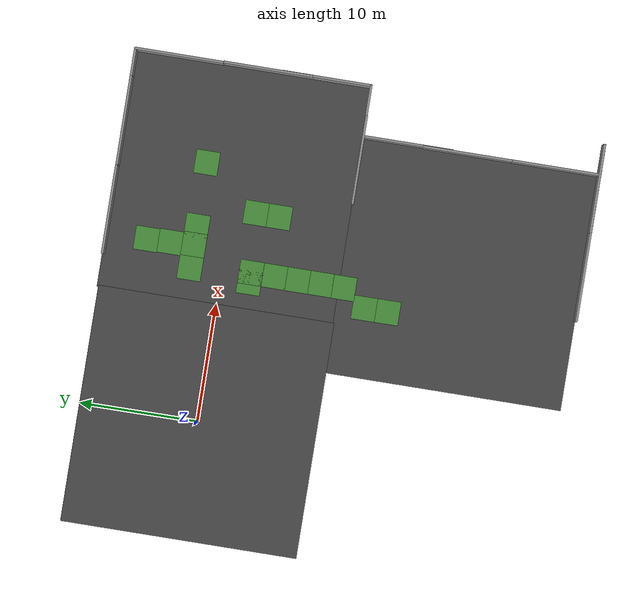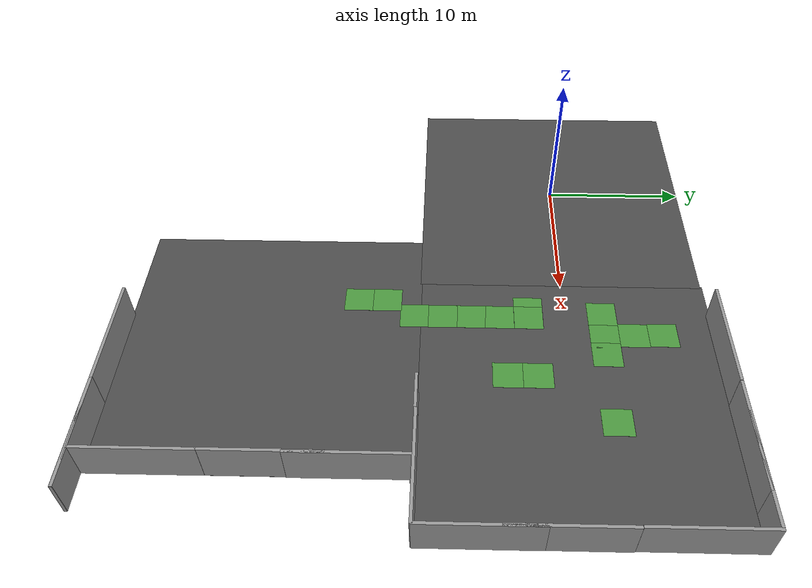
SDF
<sdf version="1.7">
 <world name="default">
  <model name="asphalt_plane">
   <static>1</static>
   <link name="link">
    <collision name="collision"><geometry><box><size>20 20 0.1</size></box></geometry></collision>
    <visual name="visual">
     <cast_shadows>0</cast_shadows>
     <geometry><box><size>20 20 0.1</size></box></geometry>
     <material>
      <script>
       <uri>model://asphalt_plane/materials/scripts</uri>
       <uri>model://asphalt_plane/materials/textures</uri>
       <name>vrc/asphalt</name>
      </script>
     </material>
    </visual>
   </link>
  </model>
  <model name="asphalt_plane_0">
   <static>1</static>
   <link name="link">
    <collision name="collision"><geometry><box><size>20 20 0.1</size></box></geometry></collision>
    <visual name="visual">
     <cast_shadows>0</cast_shadows>
     <geometry><box><size>20 20 0.1</size></box></geometry>
     <material>
      <script>
       <uri>model://asphalt_plane/materials/scripts</uri>
       <uri>model://asphalt_plane/materials/textures</uri>
       <name>vrc/asphalt</name>
      </script>
     </material>
    </visual>
   </link>
   <pose>19.8726 0.115885 0 0 -0 0</pose>
  </model>
  <model name="grey_wall_clone_0_clone_clone">
   <static>1</static>
   <link name="link">
    <pose>0 0 1.4 0 -0 0</pose>
    <collision name="collision"><geometry><box><size>7.5 0.2 2.8</size></box></geometry></collision>
    <visual name="visual">
     <cast_shadows>0</cast_shadows>
     <geometry><box><size>7.5 0.2 2.8</size></box></geometry>
     <material>
      <script>
       <uri>model://grey_wall/materials/scripts</uri>
       <uri>model://grey_wall/materials/textures</uri>
       <name>vrc/grey_wall</name>
      </script>
     </material>
    </visual>
   </link>
   <pose>23.7504 -9.91232 0 0 -0 0</pose>
  </model>
  <model name="grey_wall_clone_0_clone_clone_3">
   <static>1</static>
   <link name="link">
    <pose>0 0 1.4 0 -0 0</pose>
    <collision name="collision"><geometry><box><size>7.5 0.2 2.8</size></box></geometry></collision>
    <visual name="visual">
     <cast_shadows>0</cast_shadows>
     <geometry><box><size>7.5 0.2 2.8</size></box></geometry>
     <material>
      <script>
       <uri>model://grey_wall/materials/scripts</uri>
       <uri>model://grey_wall/materials/textures</uri>
       <name>vrc/grey_wall</name>
      </script>
     </material>
    </visual>
   </link>
   <pose>16.365 9.97288 0 0 -0 0</pose>
  </model>
  <model name="grey_wall_clone_0_clone_clone_4">
   <static>1</static>
   <link name="link">
    <pose>0 0 1.4 0 -0 0</pose>
    <collision name="collision"><geometry><box><size>7.5 0.2 2.8</size></box></geometry></collision>
    <visual name="visual">
     <cast_shadows>0</cast_shadows>
     <geometry><box><size>7.5 0.2 2.8</size></box></geometry>
     <material>
      <script>
       <uri>model://grey_wall/materials/scripts</uri>
       <uri>model://grey_wall/materials/textures</uri>
       <name>vrc/grey_wall</name>
      </script>
     </material>
    </visual>
   </link>
   <pose>23.8974 9.95874 0 0 -0 0</pose>
  </model>
  <model name="grey_wall_clone_0_clone_clone_4_clone">
   <static>1</static>
   <link name="link">
    <pose>0 0 1.4 0 -0 0</pose>
    <collision name="collision"><geometry><box><size>7.5 0.2 2.8</size></box></geometry></collision>
    <visual name="visual">
     <cast_shadows>0</cast_shadows>
     <geometry><box><size>7.5 0.2 2.8</size></box></geometry>
     <material>
      <script>
       <uri>model://grey_wall/materials/scripts</uri>
       <uri>model://grey_wall/materials/textures</uri>
       <name>vrc/grey_wall</name>
      </script>
     </material>
    </visual>
   </link>
   <pose>29.9378 6.30804 0 0 -0 1.57</pose>
  </model>
  <model name="grey_wall_clone_0_clone_clone_4_clone_0">
   <static>1</static>
   <link name="link">
    <pose>0 0 1.4 0 -0 0</pose>
    <collision name="collision"><geometry><box><size>7.5 0.2 2.8</size></box></geometry></collision>
    <visual name="visual">
     <cast_shadows>0</cast_shadows>
     <geometry><box><size>7.5 0.2 2.8</size></box></geometry>
     <material>
      <script>
       <uri>model://grey_wall/materials/scripts</uri>
       <uri>model://grey_wall/materials/textures</uri>
       <name>vrc/grey_wall</name>
      </script>
     </material>
    </visual>
   </link>
   <pose>26.2746 -9.87846 0 0 -0 0</pose>
  </model>
  <model name="grey_wall_clone_0_clone_clone_4_clone_1">
   <static>1</static>
   <link name="link">
    <pose>0 0 1.4 0 -0 0</pose>
    <collision name="collision"><geometry><box><size>7.5 0.2 2.8</size></box></geometry></collision>
    <visual name="visual">
     <cast_shadows>0</cast_shadows>
     <geometry><box><size>7.5 0.2 2.8</size></box></geometry>
     <material>
      <script>
       <uri>model://grey_wall/materials/scripts</uri>
       <uri>model://grey_wall/materials/textures</uri>
       <name>vrc/grey_wall</name>
      </script>
     </material>
    </visual>
   </link>
   <pose>26.1143 9.96003 0 0 -0 0</pose>
  </model>
  <model name="grey_wall_clone_0_clone_clone_4_clone_clone">
   <static>1</static>
   <link name="link">
    <pose>0 0 1.4 0 -0 0</pose>
    <collision name="collision"><geometry><box><size>7.5 0.2 2.8</size></box></geometry></collision>
    <visual name="visual">
     <cast_shadows>0</cast_shadows>
     <geometry><box><size>7.5 0.2 2.8</size></box></geometry>
     <material>
      <script>
       <uri>model://grey_wall/materials/scripts</uri>
       <uri>model://grey_wall/materials/textures</uri>
       <name>vrc/grey_wall</name>
      </script>
     </material>
    </visual>
   </link>
   <pose>29.9748 -1.21482 0 0 -0 1.57</pose>
  </model>
  <model name="grey_wall_clone_0_clone_clone_4_clone_clone_0">
   <static>1</static>
   <link name="link">
    <pose>0 0 1.4 0 -0 0</pose>
    <collision name="collision"><geometry><box><size>7.5 0.2 2.8</size></box></geometry></collision>
    <visual name="visual">
     <cast_shadows>0</cast_shadows>
     <geometry><box><size>7.5 0.2 2.8</size></box></geometry>
     <material>
      <script>
       <uri>model://grey_wall/materials/scripts</uri>
       <uri>model://grey_wall/materials/textures</uri>
       <name>vrc/grey_wall</name>
      </script>
     </material>
    </visual>
   </link>
   <pose>29.9905 -6.17844 0 0 -0 1.57</pose>
  </model>
  <model name="asphalt_plane_1">
   <static>1</static>
   <link name="link">
    <collision name="collision"><geometry><box><size>20 20 0.1</size></box></geometry></collision>
    <visual name="visual">
     <cast_shadows>0</cast_shadows>
     <geometry><box><size>20 20 0.1</size></box></geometry>
     <material>
      <script>
       <uri>model://asphalt_plane/materials/scripts</uri>
       <uri>model://asphalt_plane/materials/textures</uri>
       <name>vrc/asphalt</name>
      </script>
     </material>
    </visual>
   </link>
   <pose>15.7588 -19.8717 0 0 -0 0</pose>
  </model>
  <model name="grey_wall_0_clone">
   <static>1</static>
   <link name="link">
    <pose>0 0 1.4 0 -0 0</pose>
    <collision name="collision"><geometry><box><size>7.5 0.2 2.8</size></box></geometry></collision>
    <visual name="visual">
     <cast_shadows>0</cast_shadows>
     <geometry><box><size>7.5 0.2 2.8</size></box></geometry>
     <material>
      <script>
       <uri>model://grey_wall/materials/scripts</uri>
       <uri>model://grey_wall/materials/textures</uri>
       <name>vrc/grey_wall</name>
      </script>
     </material>
    </visual>
   </link>
   <pose>17.0707 -29.8389 0 0 -0 0</pose>
  </model>
  <model name="grey_wall_0_clone_0">
   <static>1</static>
   <link name="link">
    <pose>0 0 1.4 0 -0 0</pose>
    <collision name="collision"><geometry><box><size>7.5 0.2 2.8</size></box></geometry></collision>
    <visual name="visual">
     <cast_shadows>0</cast_shadows>
     <geometry><box><size>7.5 0.2 2.8</size></box></geometry>
     <material>
      <script>
       <uri>model://grey_wall/materials/scripts</uri>
       <uri>model://grey_wall/materials/textures</uri>
       <name>vrc/grey_wall</name>
      </script>
     </material>
    </visual>
   </link>
   <pose>24.5202 -29.8309 0 0 -0 0</pose>
  </model>
  <model name="grey_wall_0_clone_1">
   <static>1</static>
   <link name="link">
    <pose>0 0 1.4 0 -0 0</pose>
    <collision name="collision"><geometry><box><size>7.5 0.2 2.8</size></box></geometry></collision>
    <visual name="visual">
     <cast_shadows>0</cast_shadows>
     <geometry><box><size>7.5 0.2 2.8</size></box></geometry>
     <material>
      <script>
       <uri>model://grey_wall/materials/scripts</uri>
       <uri>model://grey_wall/materials/textures</uri>
       <name>vrc/grey_wall</name>
      </script>
     </material>
    </visual>
   </link>
   <pose>24.5331 -29.8401 0 0 -0 0</pose>
  </model>
  <model name="grey_wall_0_clone_0_clone">
   <static>1</static>
   <link name="link">
    <pose>0 0 1.4 0 -0 0</pose>
    <collision name="collision"><geometry><box><size>7.5 0.2 2.8</size></box></geometry></collision>
    <visual name="visual">
     <cast_shadows>0</cast_shadows>
     <geometry><box><size>7.5 0.2 2.8</size></box></geometry>
     <material>
      <script>
       <uri>model://grey_wall/materials/scripts</uri>
       <uri>model://grey_wall/materials/textures</uri>
       <name>vrc/grey_wall</name>
      </script>
     </material>
    </visual>
   </link>
   <pose>25.6822 -18.7134 0 0 -0 1.57134</pose>
  </model>
  <model name="grey_wall_0_clone_0_clone_0">
   <static>1</static>
   <link name="link">
    <pose>0 0 1.4 0 -0 0</pose>
    <collision name="collision"><geometry><box><size>7.5 0.2 2.8</size></box></geometry></collision>
    <visual name="visual">
     <cast_shadows>0</cast_shadows>
     <geometry><box><size>7.5 0.2 2.8</size></box></geometry>
     <material>
      <script>
       <uri>model://grey_wall/materials/scripts</uri>
       <uri>model://grey_wall/materials/textures</uri>
       <name>vrc/grey_wall</name>
      </script>
     </material>
    </visual>
   </link>
   <pose>25.7225 -13.7256 0 0 -0 1.57134</pose>
  </model>
  <model name="grass_20">
   <static>1</static>
   <link name="grass_plane">
    <visual name="visual">
     <pose>0 0 0.07 0 -0 0</pose>
     <cast_shadows>0</cast_shadows>
     <geometry><plane><normal>0 0 1</normal><size>2 2</size></plane></geometry>
     <material>
      <script>
       <uri>model://grass/materials/scripts</uri>
       <uri>model://grass/materials/textures</uri>
       <name>vrc/grass_small</name>
      </script>
     </material>
    </visual>
   </link>
   <pose>12.6119 2.65209 0 0 -0 0</pose>
  </model>
  <model name="grass_21">
   <static>1</static>
   <link name="grass_plane">
    <visual name="visual">
     <pose>0 0 0.07 0 -0 0</pose>
     <cast_shadows>0</cast_shadows>
     <geometry><plane><normal>0 0 1</normal><size>2 2</size></plane></geometry>
     <material>
      <script>
       <uri>model://grass/materials/scripts</uri>
       <uri>model://grass/materials/textures</uri>
       <name>vrc/grass_small</name>
      </script>
     </material>
    </visual>
   </link>
   <pose>14.6105 2.65182 0 0 -0 0</pose>
  </model>
  <model name="grass_22">
   <static>1</static>
   <link name="grass_plane">
    <visual name="visual">
     <pose>0 0 0.07 0 -0 0</pose>
     <cast_shadows>0</cast_shadows>
     <geometry><plane><normal>0 0 1</normal><size>2 2</size></plane></geometry>
     <material>
      <script>
       <uri>model://grass/materials/scripts</uri>
       <uri>model://grass/materials/textures</uri>
       <name>vrc/grass_small</name>
      </script>
     </material>
    </visual>
   </link>
   <pose>16.1898 2.64487 0 0 -0 0</pose>
  </model>
  <model name="grass_23">
   <static>1</static>
   <link name="grass_plane">
    <visual name="visual">
     <pose>0 0 0.07 0 -0 0</pose>
     <cast_shadows>0</cast_shadows>
     <geometry><plane><normal>0 0 1</normal><size>2 2</size></plane></geometry>
     <material>
      <script>
       <uri>model://grass/materials/scripts</uri>
       <uri>model://grass/materials/textures</uri>
       <name>vrc/grass_small</name>
      </script>
     </material>
    </visual>
   </link>
   <pose>14.5111 4.64952 0 0 -0 0</pose>
  </model>
  <model name="grass_24">
   <static>1</static>
   <link name="grass_plane">
    <visual name="visual">
     <pose>0 0 0.07 0 -0 0</pose>
     <cast_shadows>0</cast_shadows>
     <geometry><plane><normal>0 0 1</normal><size>2 2</size></plane></geometry>
     <material>
      <script>
       <uri>model://grass/materials/scripts</uri>
       <uri>model://grass/materials/textures</uri>
       <name>vrc/grass_small</name>
      </script>
     </material>
    </visual>
   </link>
   <pose>14.453 6.64404 0 0 -0 0</pose>
  </model>
  <model name="grass_25">
   <static>1</static>
   <link name="grass_plane">
    <visual name="visual">
     <pose>0 0 0.07 0 -0 0</pose>
     <cast_shadows>0</cast_shadows>
     <geometry><plane><normal>0 0 1</normal><size>2 2</size></plane></geometry>
     <material>
      <script>
       <uri>model://grass/materials/scripts</uri>
       <uri>model://grass/materials/textures</uri>
       <name>vrc/grass_small</name>
      </script>
     </material>
    </visual>
   </link>
   <pose>21.5588 2.67354 0 0 -0 0</pose>
  </model>
  <model name="grass_26">
   <static>1</static>
   <link name="grass_plane">
    <visual name="visual">
     <pose>0 0 0.07 0 -0 0</pose>
     <cast_shadows>0</cast_shadows>
     <geometry><plane><normal>0 0 1</normal><size>2 2</size></plane></geometry>
     <material>
      <script>
       <uri>model://grass/materials/scripts</uri>
       <uri>model://grass/materials/textures</uri>
       <name>vrc/grass_small</name>
      </script>
     </material>
    </visual>
   </link>
   <pose>18.0256 -2.06136 0 0 -0 0</pose>
  </model>
  <model name="grass_27">
   <static>1</static>
   <link name="grass_plane">
    <visual name="visual">
     <pose>0 0 0.07 0 -0 0</pose>
     <cast_shadows>0</cast_shadows>
     <geometry><plane><normal>0 0 1</normal><size>2 2</size></plane></geometry>
     <material>
      <script>
       <uri>model://grass/materials/scripts</uri>
       <uri>model://grass/materials/textures</uri>
       <name>vrc/grass_small</name>
      </script>
     </material>
    </visual>
   </link>
   <pose>18.0258 -4.05261 0 0 -0 0</pose>
  </model>
  <model name="grass_29">
   <static>1</static>
   <link name="grass_plane">
    <visual name="visual">
     <pose>0 0 0.07 0 -0 0</pose>
     <cast_shadows>0</cast_shadows>
     <geometry><plane><normal>0 0 1</normal><size>2 2</size></plane></geometry>
     <material>
      <script>
       <uri>model://grass/materials/scripts</uri>
       <uri>model://grass/materials/textures</uri>
       <name>vrc/grass_small</name>
      </script>
     </material>
    </visual>
   </link>
   <pose>13.0426 -2.44236 0 0 -0 0</pose>
  </model>
  <model name="grass_30">
   <static>1</static>
   <link name="grass_plane">
    <visual name="visual">
     <pose>0 0 0.07 0 -0 0</pose>
     <cast_shadows>0</cast_shadows>
     <geometry><plane><normal>0 0 1</normal><size>2 2</size></plane></geometry>
     <material>
      <script>
       <uri>model://grass/materials/scripts</uri>
       <uri>model://grass/materials/textures</uri>
       <name>vrc/grass_small</name>
      </script>
     </material>
    </visual>
   </link>
   <pose>13.0362 -4.44807 0 0 -0 0</pose>
  </model>
  <model name="grass_31">
   <static>1</static>
   <link name="grass_plane">
    <visual name="visual">
     <pose>0 0 0.07 0 -0 0</pose>
     <cast_shadows>0</cast_shadows>
     <geometry><plane><normal>0 0 1</normal><size>2 2</size></plane></geometry>
     <material>
      <script>
       <uri>model://grass/materials/scripts</uri>
       <uri>model://grass/materials/textures</uri>
       <name>vrc/grass_small</name>
      </script>
     </material>
    </visual>
   </link>
   <pose>13.0316 -6.39233 0 0 -0 0</pose>
  </model>
  <model name="grass_32">
   <static>1</static>
   <link name="grass_plane">
    <visual name="visual">
     <pose>0 0 0.07 0 -0 0</pose>
     <cast_shadows>0</cast_shadows>
     <geometry><plane><normal>0 0 1</normal><size>2 2</size></plane></geometry>
     <material>
      <script>
       <uri>model://grass/materials/scripts</uri>
       <uri>model://grass/materials/textures</uri>
       <name>vrc/grass_small</name>
      </script>
     </material>
    </visual>
   </link>
   <pose>13.0374 -8.37767 0 0 -0 0</pose>
  </model>
  <model name="grass_33">
   <static>1</static>
   <link name="grass_plane">
    <visual name="visual">
     <pose>0 0 0.07 0 -0 0</pose>
     <cast_shadows>0</cast_shadows>
     <geometry><plane><normal>0 0 1</normal><size>2 2</size></plane></geometry>
     <material>
      <script>
       <uri>model://grass/materials/scripts</uri>
       <uri>model://grass/materials/textures</uri>
       <name>vrc/grass_small</name>
      </script>
     </material>
    </visual>
   </link>
   <pose>13.0256 -10.3198 0 0 -0 0</pose>
  </model>
  <model name="grass_35">
   <static>1</static>
   <link name="grass_plane">
    <visual name="visual">
     <pose>0 0 0.07 0 -0 0</pose>
     <cast_shadows>0</cast_shadows>
     <geometry><plane><normal>0 0 1</normal><size>2 2</size></plane></geometry>
     <material>
      <script>
       <uri>model://grass/materials/scripts</uri>
       <uri>model://grass/materials/textures</uri>
       <name>vrc/grass_small</name>
      </script>
     </material>
    </visual>
   </link>
   <pose>11.5946 -12.2819 0 0 -0 0</pose>
  </model>
  <model name="grass_36">
   <static>1</static>
   <link name="grass_plane">
    <visual name="visual">
     <pose>0 0 0.07 0 -0 0</pose>
     <cast_shadows>0</cast_shadows>
     <geometry><plane><normal>0 0 1</normal><size>2 2</size></plane></geometry>
     <material>
      <script>
       <uri>model://grass/materials/scripts</uri>
       <uri>model://grass/materials/textures</uri>
       <name>vrc/grass_small</name>
      </script>
     </material>
    </visual>
   </link>
   <pose>11.5994 -14.2699 0 0 -0 0</pose>
  </model>
  <model name="grey_wall_0_clone_0_clone_clone">
   <static>1</static>
   <link name="link">
    <pose>0 0 1.4 0 -0 0</pose>
    <collision name="collision"><geometry><box><size>7.5 0.2 2.8</size></box></geometry></collision>
    <visual name="visual">
     <cast_shadows>0</cast_shadows>
     <geometry><box><size>7.5 0.2 2.8</size></box></geometry>
     <material>
      <script>
       <uri>model://grey_wall/materials/scripts</uri>
       <uri>model://grey_wall/materials/textures</uri>
       <name>vrc/grey_wall</name>
      </script>
     </material>
    </visual>
   </link>
   <pose>25.6936 -26.0808 0 0 -0 1.57134</pose>
  </model>
  <model name="grass">
   <static>1</static>
   <link name="grass_plane">
    <visual name="visual">
     <pose>0 0 0.07 0 -0 0</pose>
     <cast_shadows>0</cast_shadows>
     <geometry><plane><normal>0 0 1</normal><size>2 2</size></plane></geometry>
     <material>
      <script>
       <uri>model://grass/materials/scripts</uri>
       <uri>model://grass/materials/textures</uri>
       <name>vrc/grass_small</name>
      </script>
     </material>
    </visual>
   </link>
   <pose>12.2113 -2.43669 0 0 -0 0</pose>
  </model>
 </world>
</sdf>
